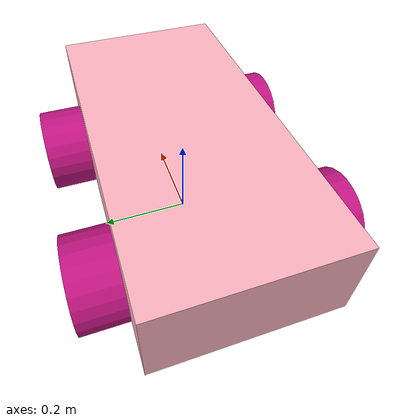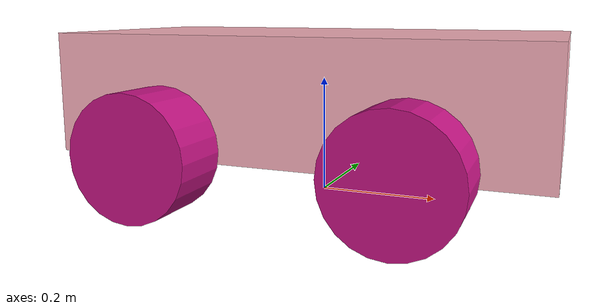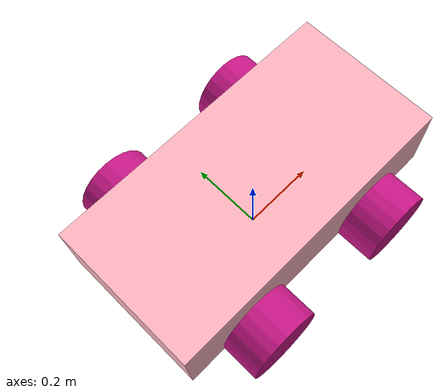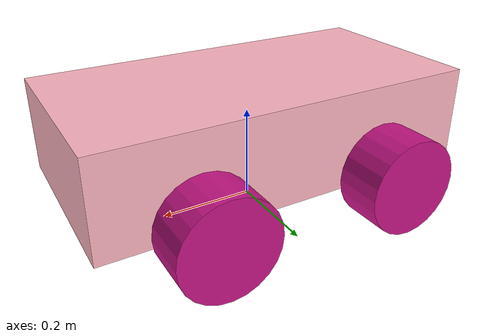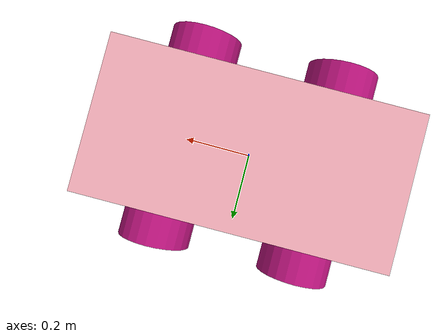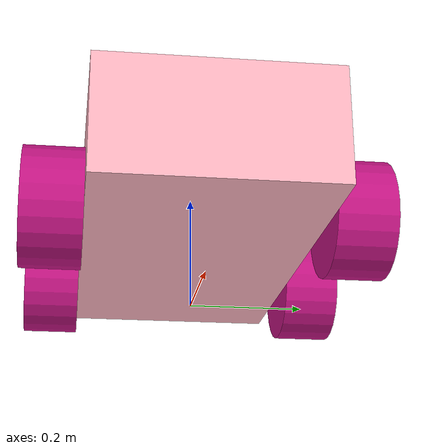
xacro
<robot name="mycar" xmlns:xacro="http://wiki.ros.org/xacro">

    <xacro:include filename="$(find robot_description)/urdf/xacro/common/base_link.xacro"/>
    <xacro:include filename="$(find robot_description)/urdf/xacro/common/wheel.xacro"/>
    <xacro:base_link/>
    <xacro:wheel wheel_name="front_left"  flag_x="1"  flag_y="1" />
    <xacro:wheel wheel_name="front_right" flag_x="1"  flag_y="-1" />
    <xacro:wheel wheel_name="back_left"   flag_x="-1" flag_y="1" />
    <xacro:wheel wheel_name="back_right"  flag_x="-1" flag_y="-1" />

    <xacro:wheel_transmission wheel_name="front_left" />
    <xacro:wheel_transmission wheel_name="front_right"/>
    <xacro:wheel_transmission wheel_name="back_left"  />
    <xacro:wheel_transmission wheel_name="back_right" />

<!--    添加gazebo_ros_control插件-->
    <gazebo>

        <plugin name="rm_ros_control" filename="librm_robot_hw_sim.so">
            <robotNamespace>/</robotNamespace>
            <robotSimType>rm_gazebo/RmRobotHWSim</robotSimType>
        </plugin>

    </gazebo>

</robot>

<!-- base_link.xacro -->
<robot name="base_link" xmlns:xacro="http://wiki.ros.org/xacro">

    <xacro:property name="base_length" value="0.8"/>
    <xacro:property name="base_wide" value="0.4"/>
    <xacro:property name="base_high" value="0.2"/>
    <xacro:property name="base_to_ground" value="0.08"/>
    <xacro:property name="base_m" value="0.5"/>

    <xacro:macro name="base_link">

        <material name="pink">
            <color rgba="1.0 0.713 0.757 1.0"/>
        </material>

        <link name="base_link">
            <inertial>
                <mass value="${base_m}"/>
                <inertia ixx="${1/12 * base_m *(base_high * base_high + base_wide * base_wide)}"
                         ixy="0" ixz="0"
                         iyy="${1/12 * base_m *(base_length * base_length + base_wide * base_wide)}"
                         iyz="0" izz="${1/12 * base_m *(base_high * base_high + base_wide * base_wide)}"
                />
            </inertial>
            <visual>
                <origin xyz="0 0 0" rpy="0 0 0" />
                <geometry>
                    <box size="${base_length} ${base_wide} ${base_high}"/>
                </geometry>
                <material name="pink"/>
            </visual>
            <collision>
                <origin xyz="0 0 0" rpy="0 0 0" />
                <geometry>
                    <box size="${base_length} ${base_wide} ${base_high}"/>
                </geometry>
            </collision>
        </link>

        <link name="odom">
            <visual>
                <origin xyz="0 0 0" rpy="0 0 0" />
                <geometry>
                    <sphere radius="0.001"/>
                </geometry>
            </visual>
        </link>

        <joint name="odom2base_link" type="fixed">
            <parent link="odom"/>
            <child link="base_link"/>
            <origin xyz="0 0 ${base_to_ground + base_high / 2}"/>
        </joint>

    </xacro:macro>

</robot>

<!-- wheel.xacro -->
<robot name="wheel" xmlns:xacro="http://wiki.ros.org/xacro">

    <xacro:property name="base_length" value="0.8"/>
    <xacro:property name="base_wide" value="0.4"/>
    <xacro:property name="base_high" value="0.2"/>
    <xacro:property name="base_to_ground" value="0.08"/>

    <xacro:property name="wheel_radius" value="0.1"/>
    <xacro:property name="wheel_wide" value="0.05"/>
    <xacro:property name="wheel_m" value="0.2"/>

    <xacro:property name="mechanical_reduction" value="50"/>

    <xacro:macro name="wheel" params="wheel_name flag_x flag_y">

        <xacro:property name="PI" value="3.14159"/>

        <link name="${wheel_name}_wheel">
            <inertial>
                <mass value="${wheel_m}"/>
                <inertia ixx="${1/12 * wheel_m * (3 * wheel_radius * wheel_radius + wheel_wide * wheel_wide)}"
                         ixy="0" ixz="0"
                         iyy="${1/12 * wheel_m * (3 * wheel_radius * wheel_radius + wheel_wide * wheel_wide)}"
                         iyz="0" izz="${1/2 * wheel_m * wheel_radius * wheel_radius}"
                />
            </inertial>
            <visual>
                <origin xyz="0 0 0" rpy="${PI/2} 0 0"/>
                <geometry>
                    <cylinder radius="${wheel_radius}" length="${wheel_radius}"/>
                </geometry>
                <material name="color_wheel">
                    <color rgba="0.780 0.082 0.522 1.0"/>
                </material>
            </visual>
            <collision>
                <origin xyz="0 0 0" rpy="${PI/2} 0 0"/>
                <geometry>
                    <cylinder radius="${wheel_radius}" length="${wheel_radius}"/>
                </geometry>
            </collision>
        </link>

        <joint name="base_link2${wheel_name}_wheel" type="continuous">
            <parent link="base_link"/>
            <child link="${wheel_name}_wheel"/>
            <origin xyz="${flag_x * base_length / 4} ${flag_y * (wheel_wide + base_wide / 2)}
            ${wheel_radius - base_to_ground - base_high / 2}"/>
            <axis xyz="0 1 0"/>
        </joint>
    </xacro:macro>

    <xacro:macro name="wheel_transmission" params="wheel_name">

        <transmission name="${wheel_name}_wheel_tran">
            <!--指定传动类型-->
            <type>transmission_interface/SimpleTransmission</type>
            <!--传动系统所代表的关节-->
            <actuator name="${wheel_name}_wheel_motor">
                <!--可选，指定硬件接口-->
                <hardwareInterface>hardware_interface/EffortJointInterface</hardwareInterface>
                <!--可选，指定关节制动器之间机械减速比，并非所有传动系统都需要此标签-->
                <mechanicalReduction>${mechanical_reduction}</mechanicalReduction>
            </actuator>

            <joint name="base_link2${wheel_name}_wheel">
                <!--指定硬件接口，注意，当在Gazebo中加载此传动系统是，值应为EffortJointInterface-->
                <!--而在RobotHW中加载此传动系统时，值应为hardware_interface/EffortJointInterface-->
                <hardwareInterface>hardware_interface/EffortJointInterface</hardwareInterface>
            </joint>
        </transmission>

    </xacro:macro>

</robot>
